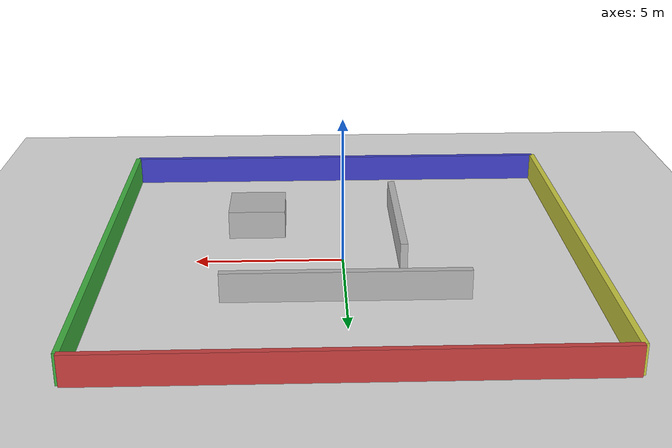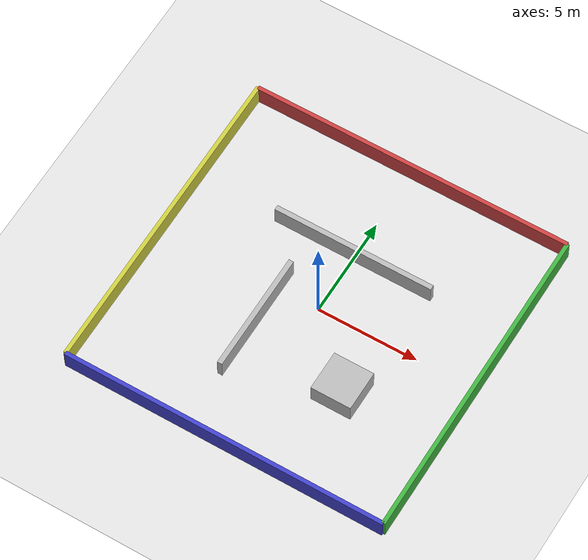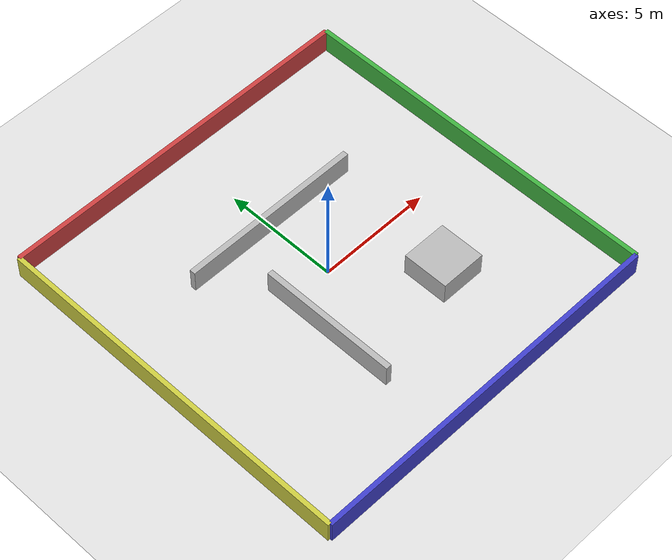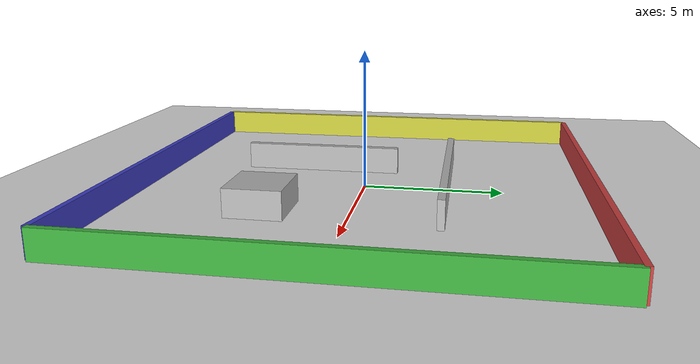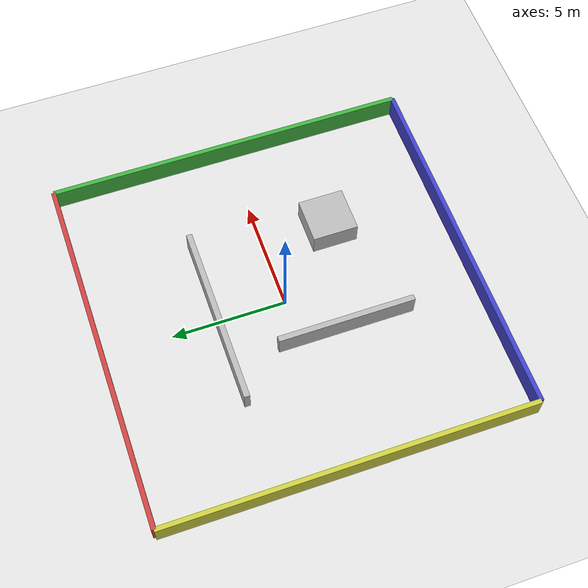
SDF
<?xml version="1.0" ?>
<sdf version="1.8">
  <world name="follower_test_large">

    <physics name="1ms" type="ignored">
      <max_step_size>0.001</max_step_size>
      <real_time_factor>1.0</real_time_factor>
    </physics>

    <plugin filename="ignition-gazebo-physics-system"
            name="ignition::gazebo::systems::Physics"/>
    <plugin filename="ignition-gazebo-user-commands-system"
            name="ignition::gazebo::systems::UserCommands"/>
    <plugin filename="ignition-gazebo-scene-broadcaster-system"
            name="ignition::gazebo::systems::SceneBroadcaster"/>
    <plugin filename="ignition-gazebo-sensors-system"
            name="ignition::gazebo::systems::Sensors">
      <render_engine>ogre2</render_engine>
    </plugin>

    <light name="sun" type="directional">
      <cast_shadows>true</cast_shadows>
      <pose>0 0 10 0 0 0</pose>
      <diffuse>0.9 0.9 0.9 1</diffuse>
      <specular>0.2 0.2 0.2 1</specular>
      <direction>-0.5 0.1 -0.9</direction>
    </light>

    <!-- Ground -->
    <model name="ground_plane">
      <static>true</static>
      <link name="link">
        <collision name="collision">
          <geometry>
            <plane>
              <normal>0 0 1</normal>
              <size>40 40</size>
            </plane>
          </geometry>
        </collision>
        <visual name="visual">
          <geometry>
            <plane>
              <normal>0 0 1</normal>
              <size>40 40</size>
            </plane>
          </geometry>
          <material>
            <ambient>0.82 0.82 0.82 1</ambient>
            <diffuse>0.88 0.88 0.88 1</diffuse>
            <specular>0.08 0.08 0.08 1</specular>
          </material>
        </visual>
      </link>
    </model>

    <!-- Outer walls -->
    <model name="wall_north">
      <static>true</static>
      <pose>0 8 0.5 0 0 0</pose>
      <link name="link">
        <collision name="collision">
          <geometry><box><size>16 0.2 1.0</size></box></geometry>
        </collision>
        <visual name="visual">
          <geometry><box><size>16 0.2 1.0</size></box></geometry>
          <material>
            <ambient>0.65 0.20 0.20 1</ambient>
            <diffuse>0.80 0.25 0.25 1</diffuse>
            <specular>0.10 0.10 0.10 1</specular>
          </material>
        </visual>
      </link>
    </model>

    <model name="wall_south">
      <static>true</static>
      <pose>0 -8 0.5 0 0 0</pose>
      <link name="link">
        <collision name="collision">
          <geometry><box><size>16 0.2 1.0</size></box></geometry>
        </collision>
        <visual name="visual">
          <geometry><box><size>16 0.2 1.0</size></box></geometry>
          <material>
            <ambient>0.20 0.20 0.65 1</ambient>
            <diffuse>0.25 0.25 0.80 1</diffuse>
            <specular>0.10 0.10 0.10 1</specular>
          </material>
        </visual>
      </link>
    </model>

    <model name="wall_east">
      <static>true</static>
      <pose>8 0 0.5 0 0 0</pose>
      <link name="link">
        <collision name="collision">
          <geometry><box><size>0.2 16 1.0</size></box></geometry>
        </collision>
        <visual name="visual">
          <geometry><box><size>0.2 16 1.0</size></box></geometry>
          <material>
            <ambient>0.20 0.55 0.20 1</ambient>
            <diffuse>0.25 0.70 0.25 1</diffuse>
            <specular>0.10 0.10 0.10 1</specular>
          </material>
        </visual>
      </link>
    </model>

    <model name="wall_west">
      <static>true</static>
      <pose>-8 0 0.5 0 0 0</pose>
      <link name="link">
        <collision name="collision">
          <geometry><box><size>0.2 16 1.0</size></box></geometry>
        </collision>
        <visual name="visual">
          <geometry><box><size>0.2 16 1.0</size></box></geometry>
          <material>
            <ambient>0.65 0.65 0.20 1</ambient>
            <diffuse>0.80 0.80 0.25 1</diffuse>
            <specular>0.10 0.10 0.10 1</specular>
          </material>
        </visual>
      </link>
    </model>

    <!-- Internal wide obstacles -->
    <model name="inner_wall_1">
      <static>true</static>
      <pose>0 3 0.5 0 0 0</pose>
      <link name="link">
        <collision name="collision">
          <geometry><box><size>8 0.25 1.0</size></box></geometry>
        </collision>
        <visual name="visual">
          <geometry><box><size>8 0.25 1.0</size></box></geometry>
        </visual>
      </link>
    </model>

    <model name="inner_wall_2">
      <static>true</static>
      <pose>-2 -2 0.5 0 0 1.5708</pose>
      <link name="link">
        <collision name="collision">
          <geometry><box><size>6 0.25 1.0</size></box></geometry>
        </collision>
        <visual name="visual">
          <geometry><box><size>6 0.25 1.0</size></box></geometry>
        </visual>
      </link>
    </model>

    <model name="center_block">
      <static>true</static>
      <pose>3 -3 0.5 0 0 0</pose>
      <link name="link">
        <collision name="collision">
          <geometry><box><size>2 2 1.0</size></box></geometry>
        </collision>
        <visual name="visual">
          <geometry><box><size>2 2 1.0</size></box></geometry>
        </visual>
      </link>
    </model>

  </world>
</sdf>
